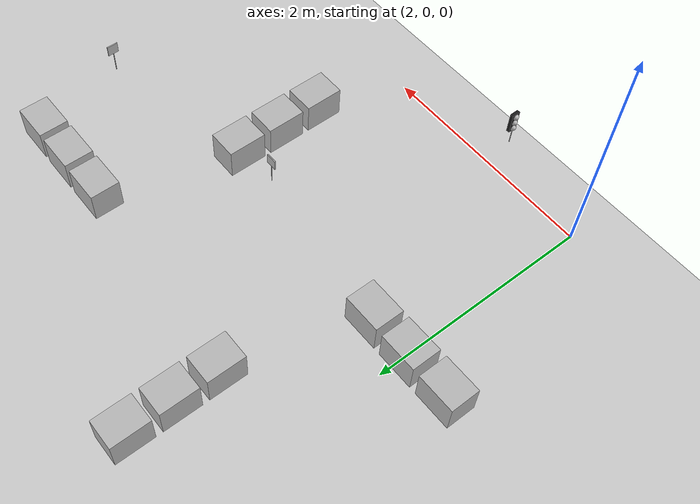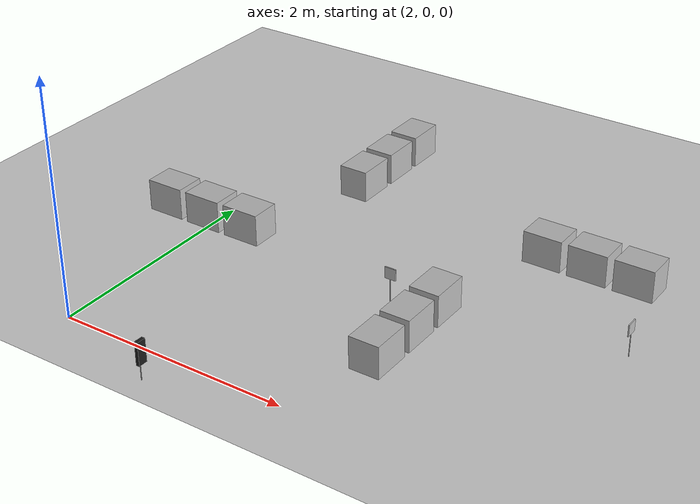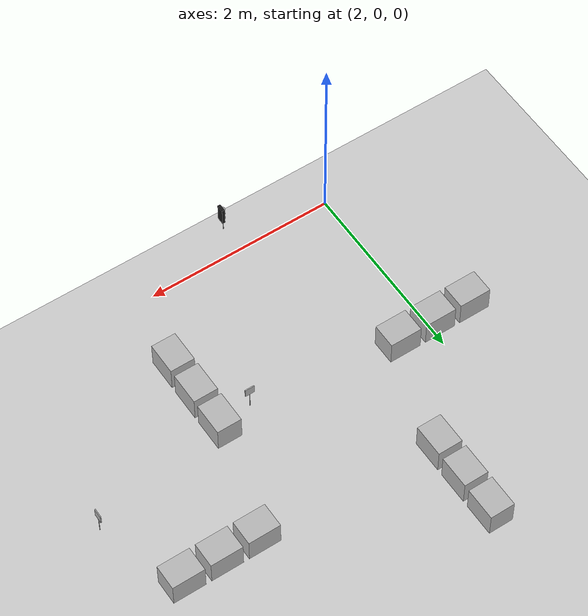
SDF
<?xml version="1.0"?>
<sdf version="1.5">
   <world name="default">
      <scene>
      <sky>
         <clouds>
            <speed>12</speed>
         </clouds>
      </sky>
      </scene>

      <include>
      <uri>model://sun</uri>
      </include>

      <model name="map">
         <static>true</static>
         <pose>3.52 2.46 0 0 0 0</pose>
         <link name="link">
            <collision name="collision">
               <geometry>
                  <plane>
                     <normal>0 0 1</normal>
                     <size>7.70 5.92</size>
                  </plane>
               </geometry>
               <surface>
                  <friction>
                     <ode>
                        <mu>100</mu>
                        <mu2>50</mu2>
                     </ode>
                  </friction>
               </surface>
            </collision>
            <visual name="visual">
               <cast_shadows>false</cast_shadows>
               <geometry>
                  <plane>
                     <normal>0 0 1</normal>
                     <size>7.70 5.92</size>
                  </plane>
               </geometry>
               <material>
                  <script>
                     <uri>model://map/materials/scripts</uri>
                     <uri>model://map/materials/textures/</uri>
                     <name>map/Image</name>
                  </script>
               </material>
            </visual>
         </link>
      </model>

      <model name="crosswalk">
         <static>true</static>
         <pose>5.75 1.9 0.25 0 0 0</pose>
         <link name="link">
            <collision name='collision'>
               <geometry>
               <box>
                  <size>0.01 0.1 0.1</size>
               </box>
               </geometry>
            </collision>
            <visual name='visual'>
               <cast_shadows>false</cast_shadows>
               <geometry>
               <box>
                  <size>0.01 0.1 0.1</size>
               </box>
               </geometry>
               <material>
                  <script>
                     <uri>model://crosswalk/materials/scripts</uri>
                     <uri>model://crosswalk/materials/textures/</uri>
                     <name>crosswalk/Image</name>
                  </script>
               </material>
            </visual>
            <collision name='pole_collision'>
               <pose>0 0 -0.125 0 0 0</pose>
               <geometry>
               <box>
                  <size>0.005 0.005 0.25</size>
               </box>
               </geometry>
            </collision>
            <visual name='pole_visual'>
               <pose>0 0 -0.125 0 0 0</pose>
               <cast_shadows>false</cast_shadows>
               <geometry>
               <box>
                  <size>0.005 0.005 0.25</size>
               </box>
               </geometry>
            </visual>
         </link>
      </model>

      <model name="roundabout">
         <static>true</static>
         <pose>3.9 1.55 0.25 0 0 1.570796</pose>
         <link name="link">
            <collision name='collision'>
               <geometry>
               <box>
                  <size>0.01 0.1 0.1</size>
               </box>
               </geometry>
            </collision>
            <visual name='visual'>
               <cast_shadows>false</cast_shadows>
               <geometry>
               <box>
                  <size>0.01 0.1 0.1</size>
               </box>
               </geometry>
               <material>
                  <script>
                     <uri>model://roundabout/materials/scripts</uri>
                     <uri>model://roundabout/materials/textures/</uri>
                     <name>roundabout/Image</name>
                  </script>
               </material>
            </visual>
            <collision name='pole_collision'>
               <pose>0 0 -0.125 0 0 0</pose>
               <geometry>
               <box>
                  <size>0.005 0.005 0.25</size>
               </box>
               </geometry>
            </collision>
            <visual name='pole_visual'>
               <pose>0 0 -0.125 0 0 0</pose>
               <cast_shadows>false</cast_shadows>
               <geometry>
               <box>
                  <size>0.005 0.005 0.25</size>
               </box>
               </geometry>
            </visual>
         </link>
      </model>

      <model name='traffic_light'>
         <static>true</static>
         <pose>3.0 -0.3 0.25 0 0 -1.570796</pose>
         <link name='color'>
            <pose>0 0 0 0 0 0</pose>
            <light name='red' type='point'>
               <pose>0 0 0.066 0 0 0</pose>
               <attenuation>
                  <range>0.2</range>
                  <linear>0.1</linear>
               </attenuation>
               <diffuse>1 0.2 0.2 1</diffuse>
               <specular>1 1 1 1</specular>
               <direction>0 0 -1</direction>
               <spot>
                  <inner_angle>0</inner_angle>
                  <outer_angle>0</outer_angle>
                  <falloff>0</falloff>
               </spot>
            </light>
            <visual name='red'>
               <pose>0 0 0.066 0 0 0</pose>
               <geometry>
                  <sphere>
                  <radius>0.026</radius>
                  </sphere>
               </geometry>
            </visual>
            <light name='yellow' type='point'>
               <pose>0 0 0 0 0 0</pose>
               <attenuation>
                  <range>0.2</range>
                  <linear>0.1</linear>
               </attenuation>
               <diffuse>1 0.2 0.2 1</diffuse>
               <specular>1 1 1 1</specular>
               <direction>0 0 -1</direction>
               <spot>
                  <inner_angle>0</inner_angle>
                  <outer_angle>0</outer_angle>
                  <falloff>0</falloff>
               </spot>
            </light>
            <visual name='yellow'>
               <pose>0 0 0 0 0 0</pose>
               <geometry>
                  <sphere>
                  <radius>0.026</radius>
                  </sphere>
               </geometry>
            </visual>
            <light name='green' type='point'>
               <pose>0 0 -0.066 0 0 0</pose>
               <attenuation>
                  <range>0.2</range>
                  <linear>0.1</linear>
               </attenuation>
               <diffuse>1 0.2 0.2 1</diffuse>
               <specular>1 1 1 1</specular>
               <direction>0 0 -1</direction>
               <spot>
                  <inner_angle>0</inner_angle>
                  <outer_angle>0</outer_angle>
                  <falloff>0</falloff>
               </spot>
            </light>
            <visual name='green'>
               <pose>0 0 -0.066 0 0 0</pose>
               <geometry>
                  <sphere>
                  <radius>0.026</radius>
                  </sphere>
               </geometry>
            </visual>
            <visual name='back'>
               <pose>0 0.015 0 0 0 0</pose>
               <geometry>
                  <box>
                  <size>0.08 0.03 0.2</size>
                  </box>
               </geometry>
               <material>
                  <ambient>0.1 0.1 0.1 1</ambient>
                  <diffuse>0.1 0.1 0.1 1</diffuse>
                  <specular>0.1 0.1 0.1 1</specular>
                  <emissive>0.1 0.1 0.1 1</emissive>
               </material>
            </visual>
            <self_collide>0</self_collide>
            <enable_wind>0</enable_wind>
            <kinematic>0</kinematic>
            <collision name='pole_collision'>
               <pose>0 0 -0.125 0 0 0</pose>
               <geometry>
               <box>
                  <size>0.005 0.005 0.25</size>
               </box>
               </geometry>
            </collision>
            <visual name='pole_visual'>
               <pose>0 0 -0.125 0 0 0</pose>
               <cast_shadows>false</cast_shadows>
               <geometry>
               <box>
                  <size>0.005 0.005 0.25</size>
               </box>
               </geometry>
            </visual>
         </link>
         <plugin name='light_control' filename='libLedPlugin.so'>
            <enable>true</enable>
            <light>
               <id>color/red</id>
               <block>
                  <duration>8</duration>
                  <interval>0</interval>
                  <color>1 0 0</color>
               </block>
               <block>
                  <duration>1</duration>
                  <interval>0</interval>
                  <color>0.01 0 0</color>
               </block>
               <block>
                  <duration>5</duration>
                  <interval>0</interval>
                  <color>0.01 0 0</color>
               </block>
               <block>
                  <duration>1</duration>
                  <interval>0</interval>
                  <color>0.01 0 0</color>
               </block>
               <enable>true</enable>
            </light>
            <light>
               <id>color/yellow</id>
               <block>
                  <duration>8</duration>
                  <interval>0</interval>
                  <color>0.01 0.01 0</color>
               </block>
               <block>
                  <duration>1</duration>
                  <interval>0</interval>
                  <color>1 1 0</color>
               </block>
               <block>
                  <duration>5</duration>
                  <interval>0</interval>
                  <color>0.01 0.01 0</color>
               </block>
               <block>
                  <duration>1</duration>
                  <interval>0</interval>
                  <color>1 1 0</color>
               </block>
               <enable>true</enable>
            </light>
            <light>
               <id>color/green</id>
               <block>
                  <duration>8</duration>
                  <interval>0</interval>
                  <color>0 0.01 0</color>
               </block>
               <block>
                  <duration>1</duration>
                  <interval>0</interval>
                  <color>0 0.01 0</color>
               </block>
               <block>
                  <duration>5</duration>
                  <interval>0</interval>
                  <color>0 1 0</color>
               </block>
               <block>
                  <duration>1</duration>
                  <interval>0</interval>
                  <color>0 0.01 0</color>
               </block>
               <enable>true</enable>
            </light>
         </plugin>
      </model>

      <model name="building1a">
         <static>true</static>
         <pose>1.965 1.76 0.14 0 0 0</pose>
         <link name="link">
            <collision name='collision'>
               <geometry>
               <box>
                  <size>0.34 0.26 0.28</size>
               </box>
               </geometry>
            </collision>
            <visual name='visual'>
               <cast_shadows>false</cast_shadows>
               <geometry>
               <box>
                  <size>0.34 0.26 0.28</size>
               </box>
               </geometry>
            </visual>
         </link>
      </model>

      <model name="building1b">
         <static>true</static>
         <pose>1.565 1.76 0.14 0 0 0</pose>
         <link name="link">
            <collision name='collision'>
               <geometry>
               <box>
                  <size>0.34 0.26 0.28</size>
               </box>
               </geometry>
            </collision>
            <visual name='visual'>
               <cast_shadows>false</cast_shadows>
               <geometry>
               <box>
                  <size>0.34 0.26 0.28</size>
               </box>
               </geometry>
            </visual>
         </link>
      </model>

      <model name="building1c">
         <static>true</static>
         <pose>2.365 1.76 0.14 0 0 0</pose>
         <link name="link">
            <collision name='collision'>
               <geometry>
               <box>
                  <size>0.34 0.26 0.28</size>
               </box>
               </geometry>
            </collision>
            <visual name='visual'>
               <cast_shadows>false</cast_shadows>
               <geometry>
               <box>
                  <size>0.34 0.26 0.28</size>
               </box>
               </geometry>
            </visual>
         </link>
      </model>

      <model name="building2a">
         <static>true</static>
         <pose>2.725 3.325 0.14 0 0 1.570796</pose>
         <link name="link">
            <collision name='collision'>
               <geometry>
               <box>
                  <size>0.34 0.26 0.28</size>
               </box>
               </geometry>
            </collision>
            <visual name='visual'>
               <cast_shadows>false</cast_shadows>
               <geometry>
               <box>
                  <size>0.34 0.26 0.28</size>
               </box>
               </geometry>
            </visual>
         </link>
      </model>

      <model name="building2b">
         <static>true</static>
         <pose>2.725 3.725 0.14 0 0 1.570796</pose>
         <link name="link">
            <collision name='collision'>
               <geometry>
               <box>
                  <size>0.34 0.26 0.28</size>
               </box>
               </geometry>
            </collision>
            <visual name='visual'>
               <cast_shadows>false</cast_shadows>
               <geometry>
               <box>
                  <size>0.34 0.26 0.28</size>
               </box>
               </geometry>
            </visual>
         </link>
      </model>

      <model name="building2c">
         <static>true</static>
         <pose>2.725 2.925 0.14 0 0 1.570796</pose>
         <link name="link">
            <collision name='collision'>
               <geometry>
               <box>
                  <size>0.34 0.26 0.28</size>
               </box>
               </geometry>
            </collision>
            <visual name='visual'>
               <cast_shadows>false</cast_shadows>
               <geometry>
               <box>
                  <size>0.34 0.26 0.28</size>
               </box>
               </geometry>
            </visual>
         </link>
      </model>

      <model name="building3a">
         <static>true</static>
         <pose>5.025 2.775 0.14 0 0 0</pose>
         <link name="link">
            <collision name='collision'>
               <geometry>
               <box>
                  <size>0.34 0.26 0.28</size>
               </box>
               </geometry>
            </collision>
            <visual name='visual'>
               <cast_shadows>false</cast_shadows>
               <geometry>
               <box>
                  <size>0.34 0.26 0.28</size>
               </box>
               </geometry>
            </visual>
         </link>
      </model>

      <model name="building3b">
         <static>true</static>
         <pose>4.625 2.775 0.14 0 0 0</pose>
         <link name="link">
            <collision name='collision'>
               <geometry>
               <box>
                  <size>0.34 0.26 0.28</size>
               </box>
               </geometry>
            </collision>
            <visual name='visual'>
               <cast_shadows>false</cast_shadows>
               <geometry>
               <box>
                  <size>0.34 0.26 0.28</size>
               </box>
               </geometry>
            </visual>
         </link>
      </model>

      <model name="building3c">
         <static>true</static>
         <pose>5.425 2.775 0.14 0 0 0</pose>
         <link name="link">
            <collision name='collision'>
               <geometry>
               <box>
                  <size>0.34 0.26 0.28</size>
               </box>
               </geometry>
            </collision>
            <visual name='visual'>
               <cast_shadows>false</cast_shadows>
               <geometry>
               <box>
                  <size>0.34 0.26 0.28</size>
               </box>
               </geometry>
            </visual>
         </link>
      </model>

      <model name="building4a">
         <static>true</static>
         <pose>4.27 1.21 0.14 0 0 1.570796</pose>
         <link name="link">
            <collision name='collision'>
               <geometry>
               <box>
                  <size>0.34 0.26 0.28</size>
               </box>
               </geometry>
            </collision>
            <visual name='visual'>
               <cast_shadows>false</cast_shadows>
               <geometry>
               <box>
                  <size>0.34 0.26 0.28</size>
               </box>
               </geometry>
            </visual>
         </link>
      </model>

      <model name="building4b">
         <static>true</static>
         <pose>4.27 1.61 0.14 0 0 1.570796</pose>
         <link name="link">
            <collision name='collision'>
               <geometry>
               <box>
                  <size>0.34 0.26 0.28</size>
               </box>
               </geometry>
            </collision>
            <visual name='visual'>
               <cast_shadows>false</cast_shadows>
               <geometry>
               <box>
                  <size>0.34 0.26 0.28</size>
               </box>
               </geometry>
            </visual>
         </link>
      </model>

      <model name="building4c">
         <static>true</static>
         <pose>4.27 0.81 0.14 0 0 1.570796</pose>
         <link name="link">
            <collision name='collision'>
               <geometry>
               <box>
                  <size>0.34 0.26 0.28</size>
               </box>
               </geometry>
            </collision>
            <visual name='visual'>
               <cast_shadows>false</cast_shadows>
               <geometry>
               <box>
                  <size>0.34 0.26 0.28</size>
               </box>
               </geometry>
            </visual>
         </link>
      </model>
   </world>
</sdf>
